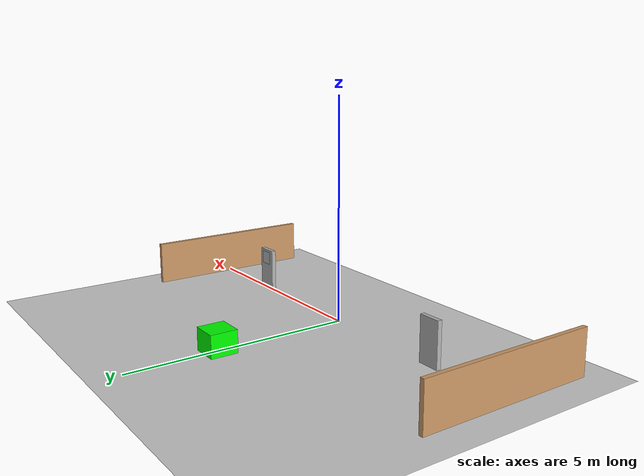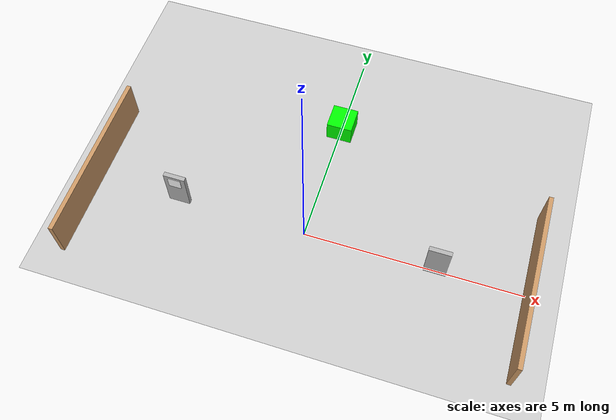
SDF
<?xml version="1.0" ?>
<sdf version="1.6">
  <world name="apriltag_world">

    <!-- Ground Plane -->
    <include>
      <uri>model://ground_plane</uri>
    </include>

    <!-- Sun -->
    <include>
      <uri>model://sun</uri>
    </include>

    <!-- AprilTag Docking Station 1 -->
    <model name="dock_station_1">
      <pose>3 0 0.5 0 0 0</pose>
      <link name="station_link">
        <visual name="station_visual">
          <geometry>
            <box>
              <size>0.5 0.1 1.0</size>
            </box>
          </geometry>
          <material>
            <ambient>0.5 0.5 0.5 1</ambient>
            <diffuse>0.7 0.7 0.7 1</diffuse>
          </material>
        </visual>
        <collision name="station_collision">
          <geometry>
            <box>
              <size>0.5 0.1 1.0</size>
            </box>
          </geometry>
        </collision>
      </link>

      <!-- AprilTag 1 -->
      <link name="apriltag_1">
        <pose>0 0.06 0.3 0 0 0</pose>
        <visual name="tag_visual">
          <geometry>
            <box>
              <size>0.3 0.01 0.3</size>
            </box>
          </geometry>
          <material>
            <script>
              <name>apriltag_1</name>
              <uri>model://apriltag_1/materials/scripts</uri>
            </script>
          </material>
        </visual>
      </link>

      <joint name="tag_joint_1" type="fixed">
        <parent>station_link</parent>
        <child>apriltag_1</child>
      </joint>
    </model>

    <!-- AprilTag Docking Station 2 -->
    <model name="dock_station_2">
      <pose>-3 0 0.5 0 0 3.14159</pose>
      <link name="station_link">
        <visual name="station_visual">
          <geometry>
            <box>
              <size>0.5 0.1 1.0</size>
            </box>
          </geometry>
          <material>
            <ambient>0.5 0.5 0.5 1</ambient>
            <diffuse>0.7 0.7 0.7 1</diffuse>
          </material>
        </visual>
        <collision name="station_collision">
          <geometry>
            <box>
              <size>0.5 0.1 1.0</size>
            </box>
          </geometry>
        </collision>
      </link>

      <!-- AprilTag 2 -->
      <link name="apriltag_2">
        <pose>0 0.06 0.3 0 0 0</pose>
        <visual name="tag_visual">
          <geometry>
            <box>
              <size>0.3 0.01 0.3</size>
            </box>
          </geometry>
          <material>
            <ambient>1 1 1 1</ambient>
            <diffuse>1 1 1 1</diffuse>
          </material>
        </visual>
      </link>

      <joint name="tag_joint_2" type="fixed">
        <parent>station_link</parent>
        <child>apriltag_2</child>
      </joint>
    </model>

    <!-- Charging Station -->
    <model name="charging_station">
      <pose>0 3 0.25 0 0 -1.5708</pose>
      <link name="charger_link">
        <visual name="charger_visual">
          <geometry>
            <box>
              <size>0.6 0.6 0.5</size>
            </box>
          </geometry>
          <material>
            <ambient>0 1 0 1</ambient>
            <diffuse>0 1 0 1</diffuse>
          </material>
        </visual>
        <collision name="charger_collision">
          <geometry>
            <box>
              <size>0.6 0.6 0.5</size>
            </box>
          </geometry>
        </collision>
      </link>
    </model>

    <!-- Some visual markers for depth -->
    <model name="wall_1">
      <pose>5 0 0.5 0 0 0</pose>
      <link name="wall_link">
        <visual name="wall_visual">
          <geometry>
            <box>
              <size>0.1 4 1.0</size>
            </box>
          </geometry>
          <material>
            <ambient>0.8 0.6 0.4 1</ambient>
            <diffuse>0.8 0.6 0.4 1</diffuse>
          </material>
        </visual>
      </link>
    </model>

    <model name="wall_2">
      <pose>-5 0 0.5 0 0 0</pose>
      <link name="wall_link">
        <visual name="wall_visual">
          <geometry>
            <box>
              <size>0.1 4 1.0</size>
            </box>
          </geometry>
          <material>
            <ambient>0.8 0.6 0.4 1</ambient>
            <diffuse>0.8 0.6 0.4 1</diffuse>
          </material>
        </visual>
      </link>
    </model>

  </world>
</sdf>
